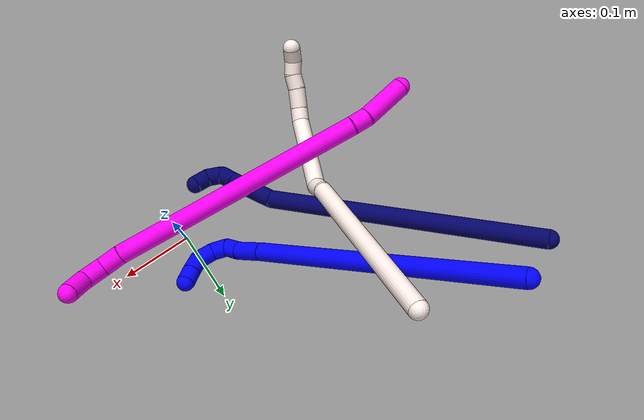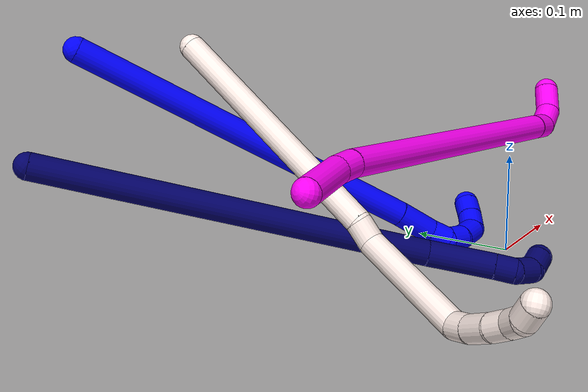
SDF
<sdf version="1.7">
 <world name="default">
  <model name="1">
   <static>0</static>
   <link name="1">
    <collision name="collision-cylinder-e_1_1_4">
     <pose>0.085135 -0.107089 -0.113015 2.38311 0.500391 1.14037</pose>
     <geometry><cylinder><radius>0.0125</radius><length>0.3549</length></cylinder></geometry>
     <surface>
      <friction><ode><mu>1.16</mu><mu2>1.16</mu2><slip1>0</slip1><slip2>0</slip2></ode></friction>
      <contact><ode><kp>1e+06</kp><kd>1</kd><max_vel>0</max_vel><min_depth>0.001</min_depth></ode></contact>
     </surface>
    </collision>
    <visual name="visual-cylinder-e_1_1_4">
     <pose>0.085135 -0.107089 -0.113015 2.38311 0.500391 1.14037</pose>
     <geometry><cylinder><radius>0.0125</radius><length>0.3549</length></cylinder></geometry>
     <material><ambient>0 0 1 1</ambient></material>
    </visual>
    <collision name="collision-cylinder-e_2_4_5">
     <pose>0.17929 -0.227018 -0.237881 2.31613 0.476533 1.01284</pose>
     <geometry><cylinder><radius>0.0125</radius><length>0.039328</length></cylinder></geometry>
     <surface>
      <friction><ode><mu>1.16</mu><mu2>1.16</mu2><slip1>0</slip1><slip2>0</slip2></ode></friction>
      <contact><ode><kp>1e+06</kp><kd>1</kd><max_vel>0</max_vel><min_depth>0.001</min_depth></ode></contact>
     </surface>
    </collision>
    <visual name="visual-cylinder-e_2_4_5">
     <pose>0.17929 -0.227018 -0.237881 2.31613 0.476533 1.01284</pose>
     <geometry><cylinder><radius>0.0125</radius><length>0.039328</length></cylinder></geometry>
     <material><ambient>0 0 1 1</ambient></material>
    </visual>
    <collision name="collision-cylinder-e_3_5_6">
     <pose>0.194441 -0.24516 -0.256311 2.46329 0.627705 1.48757</pose>
     <geometry><cylinder><radius>0.0125</radius><length>0.02088</length></cylinder></geometry>
     <surface>
      <friction><ode><mu>1.16</mu><mu2>1.16</mu2><slip1>0</slip1><slip2>0</slip2></ode></friction>
      <contact><ode><kp>1e+06</kp><kd>1</kd><max_vel>0</max_vel><min_depth>0.001</min_depth></ode></contact>
     </surface>
    </collision>
    <visual name="visual-cylinder-e_3_5_6">
     <pose>0.194441 -0.24516 -0.256311 2.46329 0.627705 1.48757</pose>
     <geometry><cylinder><radius>0.0125</radius><length>0.02088</length></cylinder></geometry>
     <material><ambient>0 0 1 1</ambient></material>
    </visual>
    <collision name="collision-cylinder-e_4_6_7">
     <pose>0.20009 -0.254983 -0.272221 2.69048 -0.046448 -0.201771</pose>
     <geometry><cylinder><radius>0.0125</radius><length>0.020759</length></cylinder></geometry>
     <surface>
      <friction><ode><mu>1.16</mu><mu2>1.16</mu2><slip1>0</slip1><slip2>0</slip2></ode></friction>
      <contact><ode><kp>1e+06</kp><kd>1</kd><max_vel>0</max_vel><min_depth>0.001</min_depth></ode></contact>
     </surface>
    </collision>
    <visual name="visual-cylinder-e_4_6_7">
     <pose>0.20009 -0.254983 -0.272221 2.69048 -0.046448 -0.201771</pose>
     <geometry><cylinder><radius>0.0125</radius><length>0.020759</length></cylinder></geometry>
     <material><ambient>0 0 1 1</ambient></material>
    </visual>
    <collision name="collision-cylinder-e_5_7_8">
     <pose>0.195358 -0.263636 -0.291835 2.7594 -0.36622 -1.52711</pose>
     <geometry><cylinder><radius>0.0125</radius><length>0.023738</length></cylinder></geometry>
     <surface>
      <friction><ode><mu>1.16</mu><mu2>1.16</mu2><slip1>0</slip1><slip2>0</slip2></ode></friction>
      <contact><ode><kp>1e+06</kp><kd>1</kd><max_vel>0</max_vel><min_depth>0.001</min_depth></ode></contact>
     </surface>
    </collision>
    <visual name="visual-cylinder-e_5_7_8">
     <pose>0.195358 -0.263636 -0.291835 2.7594 -0.36622 -1.52711</pose>
     <geometry><cylinder><radius>0.0125</radius><length>0.023738</length></cylinder></geometry>
     <material><ambient>0 0 1 1</ambient></material>
    </visual>
    <collision name="collision-cylinder-e_6_8_9">
     <pose>0.182539 -0.267944 -0.307342 3.1081 -1.023 -3.08194</pose>
     <geometry><cylinder><radius>0.0125</radius><length>0.020076</length></cylinder></geometry>
     <surface>
      <friction><ode><mu>1.16</mu><mu2>1.16</mu2><slip1>0</slip1><slip2>0</slip2></ode></friction>
      <contact><ode><kp>1e+06</kp><kd>1</kd><max_vel>0</max_vel><min_depth>0.001</min_depth></ode></contact>
     </surface>
    </collision>
    <visual name="visual-cylinder-e_6_8_9">
     <pose>0.182539 -0.267944 -0.307342 3.1081 -1.023 -3.08194</pose>
     <geometry><cylinder><radius>0.0125</radius><length>0.020076</length></cylinder></geometry>
     <material><ambient>0 0 1 1</ambient></material>
    </visual>
    <collision name="collision-cylinder-e_7_9_2">
     <pose>0.164949 -0.267772 -0.31723 -3.0672 -1.0926 3.01934</pose>
     <geometry><cylinder><radius>0.0125</radius><length>0.02032</length></cylinder></geometry>
     <surface>
      <friction><ode><mu>1.16</mu><mu2>1.16</mu2><slip1>0</slip1><slip2>0</slip2></ode></friction>
      <contact><ode><kp>1e+06</kp><kd>1</kd><max_vel>0</max_vel><min_depth>0.001</min_depth></ode></contact>
     </surface>
    </collision>
    <visual name="visual-cylinder-e_7_9_2">
     <pose>0.164949 -0.267772 -0.31723 -3.0672 -1.0926 3.01934</pose>
     <geometry><cylinder><radius>0.0125</radius><length>0.02032</length></cylinder></geometry>
     <material><ambient>0 0 1 1</ambient></material>
    </visual>
    <collision name="collision-sphere-2">
     <pose>0.155929 -0.267424 -0.321892 0 -0 0</pose>
     <geometry><sphere><radius>0.0125</radius></sphere></geometry>
     <surface>
      <friction><ode><mu>1.16</mu><mu2>1.16</mu2><slip1>0</slip1><slip2>0</slip2></ode></friction>
      <contact><ode><kp>1e+06</kp><kd>1</kd><max_vel>0</max_vel><min_depth>0.001</min_depth></ode></contact>
     </surface>
    </collision>
    <visual name="visual-sphere-2">
     <pose>0.155929 -0.267424 -0.321892 0 -0 0</pose>
     <geometry><sphere><radius>0.0125</radius></sphere></geometry>
     <material><ambient>0 0 1 1</ambient></material>
    </visual>
    <collision name="collision-sphere-9">
     <pose>0.17397 -0.268119 -0.312567 0 -0 0</pose>
     <geometry><sphere><radius>0.0125</radius></sphere></geometry>
     <surface>
      <friction><ode><mu>1.16</mu><mu2>1.16</mu2><slip1>0</slip1><slip2>0</slip2></ode></friction>
      <contact><ode><kp>1e+06</kp><kd>1</kd><max_vel>0</max_vel><min_depth>0.001</min_depth></ode></contact>
     </surface>
    </collision>
    <visual name="visual-sphere-9">
     <pose>0.17397 -0.268119 -0.312567 0 -0 0</pose>
     <geometry><sphere><radius>0.0125</radius></sphere></geometry>
     <material><ambient>0 0 1 1</ambient></material>
    </visual>
    <collision name="collision-sphere-4">
     <pose>0.17027 -0.214178 -0.226031 0 -0 0</pose>
     <geometry><sphere><radius>0.0125</radius></sphere></geometry>
     <surface>
      <friction><ode><mu>1.16</mu><mu2>1.16</mu2><slip1>0</slip1><slip2>0</slip2></ode></friction>
      <contact><ode><kp>1e+06</kp><kd>1</kd><max_vel>0</max_vel><min_depth>0.001</min_depth></ode></contact>
     </surface>
    </collision>
    <visual name="visual-sphere-4">
     <pose>0.17027 -0.214178 -0.226031 0 -0 0</pose>
     <geometry><sphere><radius>0.0125</radius></sphere></geometry>
     <material><ambient>0 0 1 1</ambient></material>
    </visual>
    <collision name="collision-sphere-1">
     <geometry><sphere><radius>0.0125</radius></sphere></geometry>
     <surface>
      <friction><ode><mu>1.16</mu><mu2>1.16</mu2><slip1>0</slip1><slip2>0</slip2></ode></friction>
      <contact><ode><kp>1e+06</kp><kd>1</kd><max_vel>0</max_vel><min_depth>0.001</min_depth></ode></contact>
     </surface>
    </collision>
    <visual name="visual-sphere-1">
     <geometry><sphere><radius>0.0125</radius></sphere></geometry>
     <material><ambient>0 0 1 1</ambient></material>
    </visual>
    <collision name="collision-sphere-8">
     <pose>0.191108 -0.267769 -0.302117 0 -0 0</pose>
     <geometry><sphere><radius>0.0125</radius></sphere></geometry>
     <surface>
      <friction><ode><mu>1.16</mu><mu2>1.16</mu2><slip1>0</slip1><slip2>0</slip2></ode></friction>
      <contact><ode><kp>1e+06</kp><kd>1</kd><max_vel>0</max_vel><min_depth>0.001</min_depth></ode></contact>
     </surface>
    </collision>
    <visual name="visual-sphere-8">
     <pose>0.191108 -0.267769 -0.302117 0 -0 0</pose>
     <geometry><sphere><radius>0.0125</radius></sphere></geometry>
     <material><ambient>0 0 1 1</ambient></material>
    </visual>
    <collision name="collision-sphere-5">
     <pose>0.18831 -0.239858 -0.249732 0 -0 0</pose>
     <geometry><sphere><radius>0.0125</radius></sphere></geometry>
     <surface>
      <friction><ode><mu>1.16</mu><mu2>1.16</mu2><slip1>0</slip1><slip2>0</slip2></ode></friction>
      <contact><ode><kp>1e+06</kp><kd>1</kd><max_vel>0</max_vel><min_depth>0.001</min_depth></ode></contact>
     </surface>
    </collision>
    <visual name="visual-sphere-5">
     <pose>0.18831 -0.239858 -0.249732 0 -0 0</pose>
     <geometry><sphere><radius>0.0125</radius></sphere></geometry>
     <material><ambient>0 0 1 1</ambient></material>
    </visual>
    <collision name="collision-sphere-6">
     <pose>0.200572 -0.250462 -0.262891 0 -0 0</pose>
     <geometry><sphere><radius>0.0125</radius></sphere></geometry>
     <surface>
      <friction><ode><mu>1.16</mu><mu2>1.16</mu2><slip1>0</slip1><slip2>0</slip2></ode></friction>
      <contact><ode><kp>1e+06</kp><kd>1</kd><max_vel>0</max_vel><min_depth>0.001</min_depth></ode></contact>
     </surface>
    </collision>
    <visual name="visual-sphere-6">
     <pose>0.200572 -0.250462 -0.262891 0 -0 0</pose>
     <geometry><sphere><radius>0.0125</radius></sphere></geometry>
     <material><ambient>0 0 1 1</ambient></material>
    </visual>
    <collision name="collision-sphere-7">
     <pose>0.199608 -0.259503 -0.281552 0 -0 0</pose>
     <geometry><sphere><radius>0.0125</radius></sphere></geometry>
     <surface>
      <friction><ode><mu>1.16</mu><mu2>1.16</mu2><slip1>0</slip1><slip2>0</slip2></ode></friction>
      <contact><ode><kp>1e+06</kp><kd>1</kd><max_vel>0</max_vel><min_depth>0.001</min_depth></ode></contact>
     </surface>
    </collision>
    <visual name="visual-sphere-7">
     <pose>0.199608 -0.259503 -0.281552 0 -0 0</pose>
     <geometry><sphere><radius>0.0125</radius></sphere></geometry>
     <material><ambient>0 0 1 1</ambient></material>
    </visual>
    <inertial>
     <pose>0.114265 -0.148849 -0.160022 0 -0 0</pose>
     <mass>0.5</mass>
     <inertia>
      <ixx>0.00437</ixx>
      <ixy>0</ixy>
      <ixz>0</ixz>
      <iyy>0.002955</iyy>
      <iyz>0</iyz>
      <izz>0.000443</izz>
     </inertia>
    </inertial>
   </link>
   <pose>-0.290472 0.306049 0.220672 1.91235 0.340219 -1.97513</pose>
  </model>
  <model name="7">
   <static>0</static>
   <link name="7">
    <collision name="collision-cylinder-e_1_1_4">
     <pose>0.057561 -0.056832 -0.167899 2.81521 0.313992 1.53142</pose>
     <geometry><cylinder><radius>0.0125</radius><length>0.372737</length></cylinder></geometry>
     <surface>
      <friction><ode><mu>1.16</mu><mu2>1.16</mu2><slip1>0</slip1><slip2>0</slip2></ode></friction>
      <contact><ode><kp>1e+06</kp><kd>1</kd><max_vel>0</max_vel><min_depth>0.001</min_depth></ode></contact>
     </surface>
    </collision>
    <visual name="visual-cylinder-e_1_1_4">
     <pose>0.057561 -0.056832 -0.167899 2.81521 0.313992 1.53142</pose>
     <geometry><cylinder><radius>0.0125</radius><length>0.372737</length></cylinder></geometry>
     <material><ambient>0.003922 0 0.403922 1</ambient></material>
    </visual>
    <collision name="collision-cylinder-e_2_4_5">
     <pose>0.117672 -0.128943 -0.364074 2.64621 0.079156 0.310656</pose>
     <geometry><cylinder><radius>0.0125</radius><length>0.064483</length></cylinder></geometry>
     <surface>
      <friction><ode><mu>1.16</mu><mu2>1.16</mu2><slip1>0</slip1><slip2>0</slip2></ode></friction>
      <contact><ode><kp>1e+06</kp><kd>1</kd><max_vel>0</max_vel><min_depth>0.001</min_depth></ode></contact>
     </surface>
    </collision>
    <visual name="visual-cylinder-e_2_4_5">
     <pose>0.117672 -0.128943 -0.364074 2.64621 0.079156 0.310656</pose>
     <geometry><cylinder><radius>0.0125</radius><length>0.064483</length></cylinder></geometry>
     <material><ambient>0.003922 0 0.403922 1</ambient></material>
    </visual>
    <collision name="collision-cylinder-e_3_5_6">
     <pose>0.120686 -0.148834 -0.401292 2.66526 0.046154 0.189576</pose>
     <geometry><cylinder><radius>0.0125</radius><length>0.020143</length></cylinder></geometry>
     <surface>
      <friction><ode><mu>1.16</mu><mu2>1.16</mu2><slip1>0</slip1><slip2>0</slip2></ode></friction>
      <contact><ode><kp>1e+06</kp><kd>1</kd><max_vel>0</max_vel><min_depth>0.001</min_depth></ode></contact>
     </surface>
    </collision>
    <visual name="visual-cylinder-e_3_5_6">
     <pose>0.120686 -0.148834 -0.401292 2.66526 0.046154 0.189576</pose>
     <geometry><cylinder><radius>0.0125</radius><length>0.020143</length></cylinder></geometry>
     <material><ambient>0.003922 0 0.403922 1</ambient></material>
    </visual>
    <collision name="collision-cylinder-e_4_6_7">
     <pose>0.128057 -0.15616 -0.417924 2.80247 0.702629 2.26762</pose>
     <geometry><cylinder><radius>0.0125</radius><length>0.021372</length></cylinder></geometry>
     <surface>
      <friction><ode><mu>1.16</mu><mu2>1.16</mu2><slip1>0</slip1><slip2>0</slip2></ode></friction>
      <contact><ode><kp>1e+06</kp><kd>1</kd><max_vel>0</max_vel><min_depth>0.001</min_depth></ode></contact>
     </surface>
    </collision>
    <visual name="visual-cylinder-e_4_6_7">
     <pose>0.128057 -0.15616 -0.417924 2.80247 0.702629 2.26762</pose>
     <geometry><cylinder><radius>0.0125</radius><length>0.021372</length></cylinder></geometry>
     <material><ambient>0.003922 0 0.403922 1</ambient></material>
    </visual>
    <collision name="collision-cylinder-e_5_7_2">
     <pose>0.145082 -0.161772 -0.427107 2.04633 1.2591 1.74754</pose>
     <geometry><cylinder><radius>0.0125</radius><length>0.021265</length></cylinder></geometry>
     <surface>
      <friction><ode><mu>1.16</mu><mu2>1.16</mu2><slip1>0</slip1><slip2>0</slip2></ode></friction>
      <contact><ode><kp>1e+06</kp><kd>1</kd><max_vel>0</max_vel><min_depth>0.001</min_depth></ode></contact>
     </surface>
    </collision>
    <visual name="visual-cylinder-e_5_7_2">
     <pose>0.145082 -0.161772 -0.427107 2.04633 1.2591 1.74754</pose>
     <geometry><cylinder><radius>0.0125</radius><length>0.021265</length></cylinder></geometry>
     <material><ambient>0.003922 0 0.403922 1</ambient></material>
    </visual>
    <collision name="collision-sphere-2">
     <pose>0.155202 -0.164671 -0.4286 0 -0 0</pose>
     <geometry><sphere><radius>0.0125</radius></sphere></geometry>
     <surface>
      <friction><ode><mu>1.16</mu><mu2>1.16</mu2><slip1>0</slip1><slip2>0</slip2></ode></friction>
      <contact><ode><kp>1e+06</kp><kd>1</kd><max_vel>0</max_vel><min_depth>0.001</min_depth></ode></contact>
     </surface>
    </collision>
    <visual name="visual-sphere-2">
     <pose>0.155202 -0.164671 -0.4286 0 -0 0</pose>
     <geometry><sphere><radius>0.0125</radius></sphere></geometry>
     <material><ambient>0.003922 0 0.403922 1</ambient></material>
    </visual>
    <collision name="collision-sphere-7">
     <pose>0.134962 -0.158873 -0.425614 0 -0 0</pose>
     <geometry><sphere><radius>0.0125</radius></sphere></geometry>
     <surface>
      <friction><ode><mu>1.16</mu><mu2>1.16</mu2><slip1>0</slip1><slip2>0</slip2></ode></friction>
      <contact><ode><kp>1e+06</kp><kd>1</kd><max_vel>0</max_vel><min_depth>0.001</min_depth></ode></contact>
     </surface>
    </collision>
    <visual name="visual-sphere-7">
     <pose>0.134962 -0.158873 -0.425614 0 -0 0</pose>
     <geometry><sphere><radius>0.0125</radius></sphere></geometry>
     <material><ambient>0.003922 0 0.403922 1</ambient></material>
    </visual>
    <collision name="collision-sphere-6">
     <pose>0.121151 -0.153448 -0.410233 0 -0 0</pose>
     <geometry><sphere><radius>0.0125</radius></sphere></geometry>
     <surface>
      <friction><ode><mu>1.16</mu><mu2>1.16</mu2><slip1>0</slip1><slip2>0</slip2></ode></friction>
      <contact><ode><kp>1e+06</kp><kd>1</kd><max_vel>0</max_vel><min_depth>0.001</min_depth></ode></contact>
     </surface>
    </collision>
    <visual name="visual-sphere-6">
     <pose>0.121151 -0.153448 -0.410233 0 -0 0</pose>
     <geometry><sphere><radius>0.0125</radius></sphere></geometry>
     <material><ambient>0.003922 0 0.403922 1</ambient></material>
    </visual>
    <collision name="collision-sphere-5">
     <pose>0.120221 -0.144221 -0.392351 0 -0 0</pose>
     <geometry><sphere><radius>0.0125</radius></sphere></geometry>
     <surface>
      <friction><ode><mu>1.16</mu><mu2>1.16</mu2><slip1>0</slip1><slip2>0</slip2></ode></friction>
      <contact><ode><kp>1e+06</kp><kd>1</kd><max_vel>0</max_vel><min_depth>0.001</min_depth></ode></contact>
     </surface>
    </collision>
    <visual name="visual-sphere-5">
     <pose>0.120221 -0.144221 -0.392351 0 -0 0</pose>
     <geometry><sphere><radius>0.0125</radius></sphere></geometry>
     <material><ambient>0.003922 0 0.403922 1</ambient></material>
    </visual>
    <collision name="collision-sphere-1">
     <geometry><sphere><radius>0.0125</radius></sphere></geometry>
     <surface>
      <friction><ode><mu>1.16</mu><mu2>1.16</mu2><slip1>0</slip1><slip2>0</slip2></ode></friction>
      <contact><ode><kp>1e+06</kp><kd>1</kd><max_vel>0</max_vel><min_depth>0.001</min_depth></ode></contact>
     </surface>
    </collision>
    <visual name="visual-sphere-1">
     <geometry><sphere><radius>0.0125</radius></sphere></geometry>
     <material><ambient>0.003922 0 0.403922 1</ambient></material>
    </visual>
    <collision name="collision-sphere-4">
     <pose>0.115123 -0.113665 -0.335797 0 -0 0</pose>
     <geometry><sphere><radius>0.0125</radius></sphere></geometry>
     <surface>
      <friction><ode><mu>1.16</mu><mu2>1.16</mu2><slip1>0</slip1><slip2>0</slip2></ode></friction>
      <contact><ode><kp>1e+06</kp><kd>1</kd><max_vel>0</max_vel><min_depth>0.001</min_depth></ode></contact>
     </surface>
    </collision>
    <visual name="visual-sphere-4">
     <pose>0.115123 -0.113665 -0.335797 0 -0 0</pose>
     <geometry><sphere><radius>0.0125</radius></sphere></geometry>
     <material><ambient>0.003922 0 0.403922 1</ambient></material>
    </visual>
    <inertial>
     <pose>0.074592 -0.078547 -0.224312 0 -0 0</pose>
     <mass>0.5</mass>
     <inertia>
      <ixx>0.004323</ixx>
      <ixy>0</ixy>
      <ixz>0</ixz>
      <iyy>0.00436</iyy>
      <iyz>0</iyz>
      <izz>-4.2e-05</izz>
     </inertia>
    </inertial>
   </link>
   <pose>-0.373513 0.288502 0.131999 -0.878541 -0.194077 0.357659</pose>
  </model>
  <model name="10">
   <static>0</static>
   <link name="10">
    <collision name="collision-cylinder-e_1_1_4">
     <pose>0.015388 -0.000631 -0.026119 3.11745 0.532285 3.05307</pose>
     <geometry><cylinder><radius>0.0125</radius><length>0.060643</length></cylinder></geometry>
     <surface>
      <friction><ode><mu>1.16</mu><mu2>1.16</mu2><slip1>0</slip1><slip2>0</slip2></ode></friction>
      <contact><ode><kp>1e+06</kp><kd>1</kd><max_vel>0</max_vel><min_depth>0.001</min_depth></ode></contact>
     </surface>
    </collision>
    <visual name="visual-cylinder-e_1_1_4">
     <pose>0.015388 -0.000631 -0.026119 3.11745 0.532285 3.05307</pose>
     <geometry><cylinder><radius>0.0125</radius><length>0.060643</length></cylinder></geometry>
     <material><ambient>1 0 0.964706 1</ambient></material>
    </visual>
    <collision name="collision-cylinder-e_2_4_5">
     <pose>0.034972 -0.002829 -0.062829 2.99464 0.373479 2.39862</pose>
     <geometry><cylinder><radius>0.0125</radius><length>0.022998</length></cylinder></geometry>
     <surface>
      <friction><ode><mu>1.16</mu><mu2>1.16</mu2><slip1>0</slip1><slip2>0</slip2></ode></friction>
      <contact><ode><kp>1e+06</kp><kd>1</kd><max_vel>0</max_vel><min_depth>0.001</min_depth></ode></contact>
     </surface>
    </collision>
    <visual name="visual-cylinder-e_2_4_5">
     <pose>0.034972 -0.002829 -0.062829 2.99464 0.373479 2.39862</pose>
     <geometry><cylinder><radius>0.0125</radius><length>0.022998</length></cylinder></geometry>
     <material><ambient>1 0 0.964706 1</ambient></material>
    </visual>
    <collision name="collision-cylinder-e_3_5_6">
     <pose>0.080306 -0.020062 -0.23348 3.04404 0.250424 2.40164</pose>
     <geometry><cylinder><radius>0.0125</radius><length>0.332006</length></cylinder></geometry>
     <surface>
      <friction><ode><mu>1.16</mu><mu2>1.16</mu2><slip1>0</slip1><slip2>0</slip2></ode></friction>
      <contact><ode><kp>1e+06</kp><kd>1</kd><max_vel>0</max_vel><min_depth>0.001</min_depth></ode></contact>
     </surface>
    </collision>
    <visual name="visual-cylinder-e_3_5_6">
     <pose>0.080306 -0.020062 -0.23348 3.04404 0.250424 2.40164</pose>
     <geometry><cylinder><radius>0.0125</radius><length>0.332006</length></cylinder></geometry>
     <material><ambient>1 0 0.964706 1</ambient></material>
    </visual>
    <collision name="collision-cylinder-e_4_6_7">
     <pose>0.125604 -0.03561 -0.406568 -3.13268 0.3091 -3.08439</pose>
     <geometry><cylinder><radius>0.0125</radius><length>0.027352</length></cylinder></geometry>
     <surface>
      <friction><ode><mu>1.16</mu><mu2>1.16</mu2><slip1>0</slip1><slip2>0</slip2></ode></friction>
      <contact><ode><kp>1e+06</kp><kd>1</kd><max_vel>0</max_vel><min_depth>0.001</min_depth></ode></contact>
     </surface>
    </collision>
    <visual name="visual-cylinder-e_4_6_7">
     <pose>0.125604 -0.03561 -0.406568 -3.13268 0.3091 -3.08439</pose>
     <geometry><cylinder><radius>0.0125</radius><length>0.027352</length></cylinder></geometry>
     <material><ambient>1 0 0.964706 1</ambient></material>
    </visual>
    <collision name="collision-cylinder-e_5_7_8">
     <pose>0.138854 -0.039394 -0.429132 2.75338 0.722936 2.18264</pose>
     <geometry><cylinder><radius>0.0125</radius><length>0.027478</length></cylinder></geometry>
     <surface>
      <friction><ode><mu>1.16</mu><mu2>1.16</mu2><slip1>0</slip1><slip2>0</slip2></ode></friction>
      <contact><ode><kp>1e+06</kp><kd>1</kd><max_vel>0</max_vel><min_depth>0.001</min_depth></ode></contact>
     </surface>
    </collision>
    <visual name="visual-cylinder-e_5_7_8">
     <pose>0.138854 -0.039394 -0.429132 2.75338 0.722936 2.18264</pose>
     <geometry><cylinder><radius>0.0125</radius><length>0.027478</length></cylinder></geometry>
     <material><ambient>1 0 0.964706 1</ambient></material>
    </visual>
    <collision name="collision-cylinder-e_6_8_2">
     <pose>0.160853 -0.049094 -0.44286 2.19674 1.06461 1.71237</pose>
     <geometry><cylinder><radius>0.0125</radius><length>0.029522</length></cylinder></geometry>
     <surface>
      <friction><ode><mu>1.16</mu><mu2>1.16</mu2><slip1>0</slip1><slip2>0</slip2></ode></friction>
      <contact><ode><kp>1e+06</kp><kd>1</kd><max_vel>0</max_vel><min_depth>0.001</min_depth></ode></contact>
     </surface>
    </collision>
    <visual name="visual-cylinder-e_6_8_2">
     <pose>0.160853 -0.049094 -0.44286 2.19674 1.06461 1.71237</pose>
     <geometry><cylinder><radius>0.0125</radius><length>0.029522</length></cylinder></geometry>
     <material><ambient>1 0 0.964706 1</ambient></material>
    </visual>
    <collision name="collision-sphere-2">
     <pose>0.173763 -0.054893 -0.447053 0 -0 0</pose>
     <geometry><sphere><radius>0.0125</radius></sphere></geometry>
     <surface>
      <friction><ode><mu>1.16</mu><mu2>1.16</mu2><slip1>0</slip1><slip2>0</slip2></ode></friction>
      <contact><ode><kp>1e+06</kp><kd>1</kd><max_vel>0</max_vel><min_depth>0.001</min_depth></ode></contact>
     </surface>
    </collision>
    <visual name="visual-sphere-2">
     <pose>0.173763 -0.054893 -0.447053 0 -0 0</pose>
     <geometry><sphere><radius>0.0125</radius></sphere></geometry>
     <material><ambient>1 0 0.964706 1</ambient></material>
    </visual>
    <collision name="collision-sphere-4">
     <pose>0.030777 -0.001262 -0.052238 0 -0 0</pose>
     <geometry><sphere><radius>0.0125</radius></sphere></geometry>
     <surface>
      <friction><ode><mu>1.16</mu><mu2>1.16</mu2><slip1>0</slip1><slip2>0</slip2></ode></friction>
      <contact><ode><kp>1e+06</kp><kd>1</kd><max_vel>0</max_vel><min_depth>0.001</min_depth></ode></contact>
     </surface>
    </collision>
    <visual name="visual-sphere-4">
     <pose>0.030777 -0.001262 -0.052238 0 -0 0</pose>
     <geometry><sphere><radius>0.0125</radius></sphere></geometry>
     <material><ambient>1 0 0.964706 1</ambient></material>
    </visual>
    <collision name="collision-sphere-1">
     <geometry><sphere><radius>0.0125</radius></sphere></geometry>
     <surface>
      <friction><ode><mu>1.16</mu><mu2>1.16</mu2><slip1>0</slip1><slip2>0</slip2></ode></friction>
      <contact><ode><kp>1e+06</kp><kd>1</kd><max_vel>0</max_vel><min_depth>0.001</min_depth></ode></contact>
     </surface>
    </collision>
    <visual name="visual-sphere-1">
     <geometry><sphere><radius>0.0125</radius></sphere></geometry>
     <material><ambient>1 0 0.964706 1</ambient></material>
    </visual>
    <collision name="collision-sphere-8">
     <pose>0.147943 -0.043294 -0.438667 0 -0 0</pose>
     <geometry><sphere><radius>0.0125</radius></sphere></geometry>
     <surface>
      <friction><ode><mu>1.16</mu><mu2>1.16</mu2><slip1>0</slip1><slip2>0</slip2></ode></friction>
      <contact><ode><kp>1e+06</kp><kd>1</kd><max_vel>0</max_vel><min_depth>0.001</min_depth></ode></contact>
     </surface>
    </collision>
    <visual name="visual-sphere-8">
     <pose>0.147943 -0.043294 -0.438667 0 -0 0</pose>
     <geometry><sphere><radius>0.0125</radius></sphere></geometry>
     <material><ambient>1 0 0.964706 1</ambient></material>
    </visual>
    <collision name="collision-sphere-5">
     <pose>0.039168 -0.004397 -0.07342 0 -0 0</pose>
     <geometry><sphere><radius>0.0125</radius></sphere></geometry>
     <surface>
      <friction><ode><mu>1.16</mu><mu2>1.16</mu2><slip1>0</slip1><slip2>0</slip2></ode></friction>
      <contact><ode><kp>1e+06</kp><kd>1</kd><max_vel>0</max_vel><min_depth>0.001</min_depth></ode></contact>
     </surface>
    </collision>
    <visual name="visual-sphere-5">
     <pose>0.039168 -0.004397 -0.07342 0 -0 0</pose>
     <geometry><sphere><radius>0.0125</radius></sphere></geometry>
     <material><ambient>1 0 0.964706 1</ambient></material>
    </visual>
    <collision name="collision-sphere-6">
     <pose>0.121444 -0.035726 -0.393541 0 -0 0</pose>
     <geometry><sphere><radius>0.0125</radius></sphere></geometry>
     <surface>
      <friction><ode><mu>1.16</mu><mu2>1.16</mu2><slip1>0</slip1><slip2>0</slip2></ode></friction>
      <contact><ode><kp>1e+06</kp><kd>1</kd><max_vel>0</max_vel><min_depth>0.001</min_depth></ode></contact>
     </surface>
    </collision>
    <visual name="visual-sphere-6">
     <pose>0.121444 -0.035726 -0.393541 0 -0 0</pose>
     <geometry><sphere><radius>0.0125</radius></sphere></geometry>
     <material><ambient>1 0 0.964706 1</ambient></material>
    </visual>
    <collision name="collision-sphere-7">
     <pose>0.129764 -0.035494 -0.419596 0 -0 0</pose>
     <geometry><sphere><radius>0.0125</radius></sphere></geometry>
     <surface>
      <friction><ode><mu>1.16</mu><mu2>1.16</mu2><slip1>0</slip1><slip2>0</slip2></ode></friction>
      <contact><ode><kp>1e+06</kp><kd>1</kd><max_vel>0</max_vel><min_depth>0.001</min_depth></ode></contact>
     </surface>
    </collision>
    <visual name="visual-sphere-7">
     <pose>0.129764 -0.035494 -0.419596 0 -0 0</pose>
     <geometry><sphere><radius>0.0125</radius></sphere></geometry>
     <material><ambient>1 0 0.964706 1</ambient></material>
    </visual>
    <inertial>
     <pose>0.080798 -0.020539 -0.233064 0 -0 0</pose>
     <mass>0.5</mass>
     <inertia>
      <ixx>-0.000194</ixx>
      <ixy>0</ixy>
      <ixz>0</ixz>
      <iyy>0.004333</iyy>
      <iyz>0</iyz>
      <izz>-0.000519</izz>
     </inertia>
    </inertial>
   </link>
   <pose>-0.33846 0.02418 0.140677 -1.18883 -0.601929 1.11221</pose>
  </model>
  <model name="11">
   <static>0</static>
   <link name="11">
    <collision name="collision-cylinder-e_1_1_4">
     <pose>-0.07229 -0.070419 0.06963 0.791035 -0.630558 -0.270689</pose>
     <geometry><cylinder><radius>0.0125</radius><length>0.245219</length></cylinder></geometry>
     <surface>
      <friction><ode><mu>1.16</mu><mu2>1.16</mu2><slip1>0</slip1><slip2>0</slip2></ode></friction>
      <contact><ode><kp>1e+06</kp><kd>1</kd><max_vel>0</max_vel><min_depth>0.001</min_depth></ode></contact>
     </surface>
    </collision>
    <visual name="visual-cylinder-e_1_1_4">
     <pose>-0.07229 -0.070419 0.06963 0.791035 -0.630558 -0.270689</pose>
     <geometry><cylinder><radius>0.0125</radius><length>0.245219</length></cylinder></geometry>
     <material><ambient>1 0.933333 0.909804 1</ambient></material>
    </visual>
    <collision name="collision-cylinder-e_2_4_5">
     <pose>-0.15184 -0.14447 0.147335 0.422625 -0.686842 -0.153117</pose>
     <geometry><cylinder><radius>0.0125</radius><length>0.0229</length></cylinder></geometry>
     <surface>
      <friction><ode><mu>1.16</mu><mu2>1.16</mu2><slip1>0</slip1><slip2>0</slip2></ode></friction>
      <contact><ode><kp>1e+06</kp><kd>1</kd><max_vel>0</max_vel><min_depth>0.001</min_depth></ode></contact>
     </surface>
    </collision>
    <visual name="visual-cylinder-e_2_4_5">
     <pose>-0.15184 -0.14447 0.147335 0.422625 -0.686842 -0.153117</pose>
     <geometry><cylinder><radius>0.0125</radius><length>0.0229</length></cylinder></geometry>
     <material><ambient>1 0.933333 0.909804 1</ambient></material>
    </visual>
    <collision name="collision-cylinder-e_3_5_6">
     <pose>-0.176608 -0.197205 0.185345 1.02332 -0.29551 -0.166771</pose>
     <geometry><cylinder><radius>0.0125</radius><length>0.120229</length></cylinder></geometry>
     <surface>
      <friction><ode><mu>1.16</mu><mu2>1.16</mu2><slip1>0</slip1><slip2>0</slip2></ode></friction>
      <contact><ode><kp>1e+06</kp><kd>1</kd><max_vel>0</max_vel><min_depth>0.001</min_depth></ode></contact>
     </surface>
    </collision>
    <visual name="visual-cylinder-e_3_5_6">
     <pose>-0.176608 -0.197205 0.185345 1.02332 -0.29551 -0.166771</pose>
     <geometry><cylinder><radius>0.0125</radius><length>0.120229</length></cylinder></geometry>
     <material><ambient>1 0.933333 0.909804 1</ambient></material>
    </visual>
    <collision name="collision-cylinder-e_4_6_7">
     <pose>-0.194386 -0.256847 0.215895 1.51249 -0.02565 -0.024197</pose>
     <geometry><cylinder><radius>0.0125</radius><length>0.021122</length></cylinder></geometry>
     <surface>
      <friction><ode><mu>1.16</mu><mu2>1.16</mu2><slip1>0</slip1><slip2>0</slip2></ode></friction>
      <contact><ode><kp>1e+06</kp><kd>1</kd><max_vel>0</max_vel><min_depth>0.001</min_depth></ode></contact>
     </surface>
    </collision>
    <visual name="visual-cylinder-e_4_6_7">
     <pose>-0.194386 -0.256847 0.215895 1.51249 -0.02565 -0.024197</pose>
     <geometry><cylinder><radius>0.0125</radius><length>0.021122</length></cylinder></geometry>
     <material><ambient>1 0.933333 0.909804 1</ambient></material>
    </visual>
    <collision name="collision-cylinder-e_5_7_8">
     <pose>-0.19387 -0.281779 0.214822 1.68758 0.0542 0.060926</pose>
     <geometry><cylinder><radius>0.0125</radius><length>0.029025</length></cylinder></geometry>
     <surface>
      <friction><ode><mu>1.16</mu><mu2>1.16</mu2><slip1>0</slip1><slip2>0</slip2></ode></friction>
      <contact><ode><kp>1e+06</kp><kd>1</kd><max_vel>0</max_vel><min_depth>0.001</min_depth></ode></contact>
     </surface>
    </collision>
    <visual name="visual-cylinder-e_5_7_8">
     <pose>-0.19387 -0.281779 0.214822 1.68758 0.0542 0.060926</pose>
     <geometry><cylinder><radius>0.0125</radius><length>0.029025</length></cylinder></geometry>
     <material><ambient>1 0.933333 0.909804 1</ambient></material>
    </visual>
    <collision name="collision-cylinder-e_6_8_9">
     <pose>-0.193716 -0.306565 0.21061 1.80899 -0.059018 -0.07505</pose>
     <geometry><cylinder><radius>0.0125</radius><length>0.021429</length></cylinder></geometry>
     <surface>
      <friction><ode><mu>1.16</mu><mu2>1.16</mu2><slip1>0</slip1><slip2>0</slip2></ode></friction>
      <contact><ode><kp>1e+06</kp><kd>1</kd><max_vel>0</max_vel><min_depth>0.001</min_depth></ode></contact>
     </surface>
    </collision>
    <visual name="visual-cylinder-e_6_8_9">
     <pose>-0.193716 -0.306565 0.21061 1.80899 -0.059018 -0.07505</pose>
     <geometry><cylinder><radius>0.0125</radius><length>0.021429</length></cylinder></geometry>
     <material><ambient>1 0.933333 0.909804 1</ambient></material>
    </visual>
    <collision name="collision-cylinder-e_7_9_10">
     <pose>-0.192008 -0.326528 0.20636 1.7493 0.236182 0.282045</pose>
     <geometry><cylinder><radius>0.0125</radius><length>0.020003</length></cylinder></geometry>
     <surface>
      <friction><ode><mu>1.16</mu><mu2>1.16</mu2><slip1>0</slip1><slip2>0</slip2></ode></friction>
      <contact><ode><kp>1e+06</kp><kd>1</kd><max_vel>0</max_vel><min_depth>0.001</min_depth></ode></contact>
     </surface>
    </collision>
    <visual name="visual-cylinder-e_7_9_10">
     <pose>-0.192008 -0.326528 0.20636 1.7493 0.236182 0.282045</pose>
     <geometry><cylinder><radius>0.0125</radius><length>0.020003</length></cylinder></geometry>
     <material><ambient>1 0.933333 0.909804 1</ambient></material>
    </visual>
    <collision name="collision-cylinder-e_8_10_2">
     <pose>-0.187224 -0.343661 0.198504 2.25178 0.245956 0.507312</pose>
     <geometry><cylinder><radius>0.0125</radius><length>0.020074</length></cylinder></geometry>
     <surface>
      <friction><ode><mu>1.16</mu><mu2>1.16</mu2><slip1>0</slip1><slip2>0</slip2></ode></friction>
      <contact><ode><kp>1e+06</kp><kd>1</kd><max_vel>0</max_vel><min_depth>0.001</min_depth></ode></contact>
     </surface>
    </collision>
    <visual name="visual-cylinder-e_8_10_2">
     <pose>-0.187224 -0.343661 0.198504 2.25178 0.245956 0.507312</pose>
     <geometry><cylinder><radius>0.0125</radius><length>0.020074</length></cylinder></geometry>
     <material><ambient>1 0.933333 0.909804 1</ambient></material>
    </visual>
    <collision name="collision-sphere-2">
     <pose>-0.18478 -0.351225 0.192375 0 -0 0</pose>
     <geometry><sphere><radius>0.0125</radius></sphere></geometry>
     <surface>
      <friction><ode><mu>1.16</mu><mu2>1.16</mu2><slip1>0</slip1><slip2>0</slip2></ode></friction>
      <contact><ode><kp>1e+06</kp><kd>1</kd><max_vel>0</max_vel><min_depth>0.001</min_depth></ode></contact>
     </surface>
    </collision>
    <visual name="visual-sphere-2">
     <pose>-0.18478 -0.351225 0.192375 0 -0 0</pose>
     <geometry><sphere><radius>0.0125</radius></sphere></geometry>
     <material><ambient>1 0.933333 0.909804 1</ambient></material>
    </visual>
    <collision name="collision-sphere-10">
     <pose>-0.189667 -0.336098 0.204633 0 -0 0</pose>
     <geometry><sphere><radius>0.0125</radius></sphere></geometry>
     <surface>
      <friction><ode><mu>1.16</mu><mu2>1.16</mu2><slip1>0</slip1><slip2>0</slip2></ode></friction>
      <contact><ode><kp>1e+06</kp><kd>1</kd><max_vel>0</max_vel><min_depth>0.001</min_depth></ode></contact>
     </surface>
    </collision>
    <visual name="visual-sphere-10">
     <pose>-0.189667 -0.336098 0.204633 0 -0 0</pose>
     <geometry><sphere><radius>0.0125</radius></sphere></geometry>
     <material><ambient>1 0.933333 0.909804 1</ambient></material>
    </visual>
    <collision name="collision-sphere-9">
     <pose>-0.194348 -0.316959 0.208086 0 -0 0</pose>
     <geometry><sphere><radius>0.0125</radius></sphere></geometry>
     <surface>
      <friction><ode><mu>1.16</mu><mu2>1.16</mu2><slip1>0</slip1><slip2>0</slip2></ode></friction>
      <contact><ode><kp>1e+06</kp><kd>1</kd><max_vel>0</max_vel><min_depth>0.001</min_depth></ode></contact>
     </surface>
    </collision>
    <visual name="visual-sphere-9">
     <pose>-0.194348 -0.316959 0.208086 0 -0 0</pose>
     <geometry><sphere><radius>0.0125</radius></sphere></geometry>
     <material><ambient>1 0.933333 0.909804 1</ambient></material>
    </visual>
    <collision name="collision-sphere-4">
     <pose>-0.14458 -0.140839 0.13926 0 -0 0</pose>
     <geometry><sphere><radius>0.0125</radius></sphere></geometry>
     <surface>
      <friction><ode><mu>1.16</mu><mu2>1.16</mu2><slip1>0</slip1><slip2>0</slip2></ode></friction>
      <contact><ode><kp>1e+06</kp><kd>1</kd><max_vel>0</max_vel><min_depth>0.001</min_depth></ode></contact>
     </surface>
    </collision>
    <visual name="visual-sphere-4">
     <pose>-0.14458 -0.140839 0.13926 0 -0 0</pose>
     <geometry><sphere><radius>0.0125</radius></sphere></geometry>
     <material><ambient>1 0.933333 0.909804 1</ambient></material>
    </visual>
    <collision name="collision-sphere-1">
     <geometry><sphere><radius>0.0125</radius></sphere></geometry>
     <surface>
      <friction><ode><mu>1.16</mu><mu2>1.16</mu2><slip1>0</slip1><slip2>0</slip2></ode></friction>
      <contact><ode><kp>1e+06</kp><kd>1</kd><max_vel>0</max_vel><min_depth>0.001</min_depth></ode></contact>
     </surface>
    </collision>
    <visual name="visual-sphere-1">
     <geometry><sphere><radius>0.0125</radius></sphere></geometry>
     <material><ambient>1 0.933333 0.909804 1</ambient></material>
    </visual>
    <collision name="collision-sphere-8">
     <pose>-0.193084 -0.296172 0.213133 0 -0 0</pose>
     <geometry><sphere><radius>0.0125</radius></sphere></geometry>
     <surface>
      <friction><ode><mu>1.16</mu><mu2>1.16</mu2><slip1>0</slip1><slip2>0</slip2></ode></friction>
      <contact><ode><kp>1e+06</kp><kd>1</kd><max_vel>0</max_vel><min_depth>0.001</min_depth></ode></contact>
     </surface>
    </collision>
    <visual name="visual-sphere-8">
     <pose>-0.193084 -0.296172 0.213133 0 -0 0</pose>
     <geometry><sphere><radius>0.0125</radius></sphere></geometry>
     <material><ambient>1 0.933333 0.909804 1</ambient></material>
    </visual>
    <collision name="collision-sphere-5">
     <pose>-0.159101 -0.148102 0.15541 0 -0 0</pose>
     <geometry><sphere><radius>0.0125</radius></sphere></geometry>
     <surface>
      <friction><ode><mu>1.16</mu><mu2>1.16</mu2><slip1>0</slip1><slip2>0</slip2></ode></friction>
      <contact><ode><kp>1e+06</kp><kd>1</kd><max_vel>0</max_vel><min_depth>0.001</min_depth></ode></contact>
     </surface>
    </collision>
    <visual name="visual-sphere-5">
     <pose>-0.159101 -0.148102 0.15541 0 -0 0</pose>
     <geometry><sphere><radius>0.0125</radius></sphere></geometry>
     <material><ambient>1 0.933333 0.909804 1</ambient></material>
    </visual>
    <collision name="collision-sphere-6">
     <pose>-0.194115 -0.246308 0.21528 0 -0 0</pose>
     <geometry><sphere><radius>0.0125</radius></sphere></geometry>
     <surface>
      <friction><ode><mu>1.16</mu><mu2>1.16</mu2><slip1>0</slip1><slip2>0</slip2></ode></friction>
      <contact><ode><kp>1e+06</kp><kd>1</kd><max_vel>0</max_vel><min_depth>0.001</min_depth></ode></contact>
     </surface>
    </collision>
    <visual name="visual-sphere-6">
     <pose>-0.194115 -0.246308 0.21528 0 -0 0</pose>
     <geometry><sphere><radius>0.0125</radius></sphere></geometry>
     <material><ambient>1 0.933333 0.909804 1</ambient></material>
    </visual>
    <collision name="collision-sphere-7">
     <pose>-0.194656 -0.267387 0.21651 0 -0 0</pose>
     <geometry><sphere><radius>0.0125</radius></sphere></geometry>
     <surface>
      <friction><ode><mu>1.16</mu><mu2>1.16</mu2><slip1>0</slip1><slip2>0</slip2></ode></friction>
      <contact><ode><kp>1e+06</kp><kd>1</kd><max_vel>0</max_vel><min_depth>0.001</min_depth></ode></contact>
     </surface>
    </collision>
    <visual name="visual-sphere-7">
     <pose>-0.194656 -0.267387 0.21651 0 -0 0</pose>
     <geometry><sphere><radius>0.0125</radius></sphere></geometry>
     <material><ambient>1 0.933333 0.909804 1</ambient></material>
    </visual>
    <inertial>
     <pose>-0.127841 -0.155779 0.132307 0 -0 0</pose>
     <mass>0.5</mass>
     <inertia>
      <ixx>0.000811</ixx>
      <ixy>0</ixy>
      <ixz>0</ixz>
      <iyy>0.000743</iyy>
      <iyz>0</iyz>
      <izz>0.001632</izz>
     </inertia>
    </inertial>
   </link>
   <pose>-0.174273 0.265673 0.212125 -2.85119 -0.399978 2.56046</pose>
  </model>
 </world>
</sdf>
